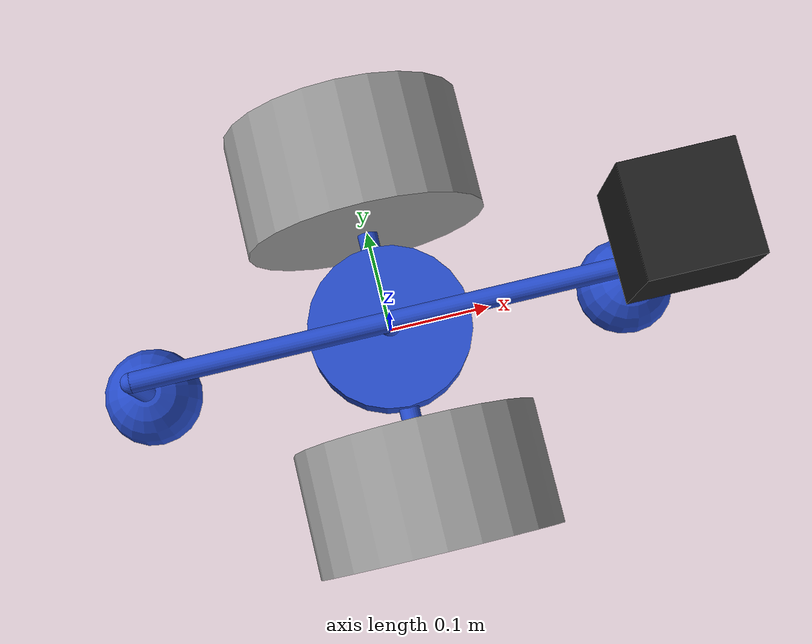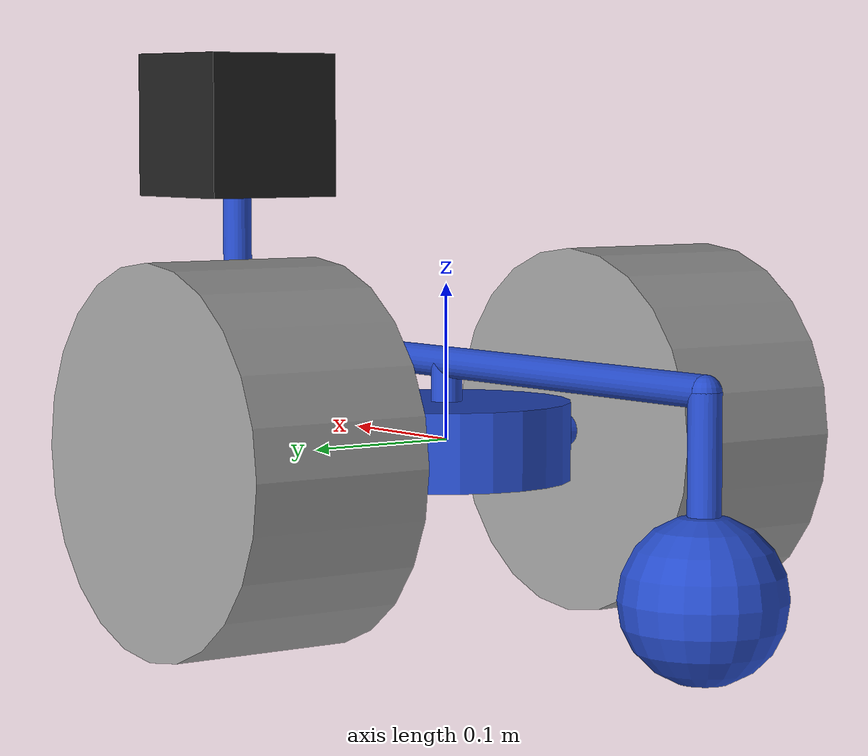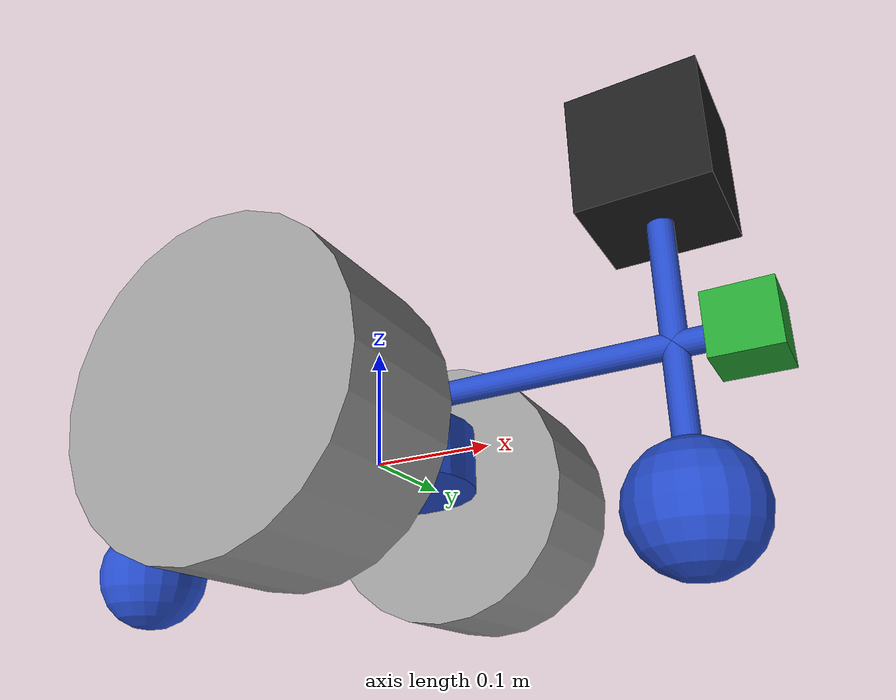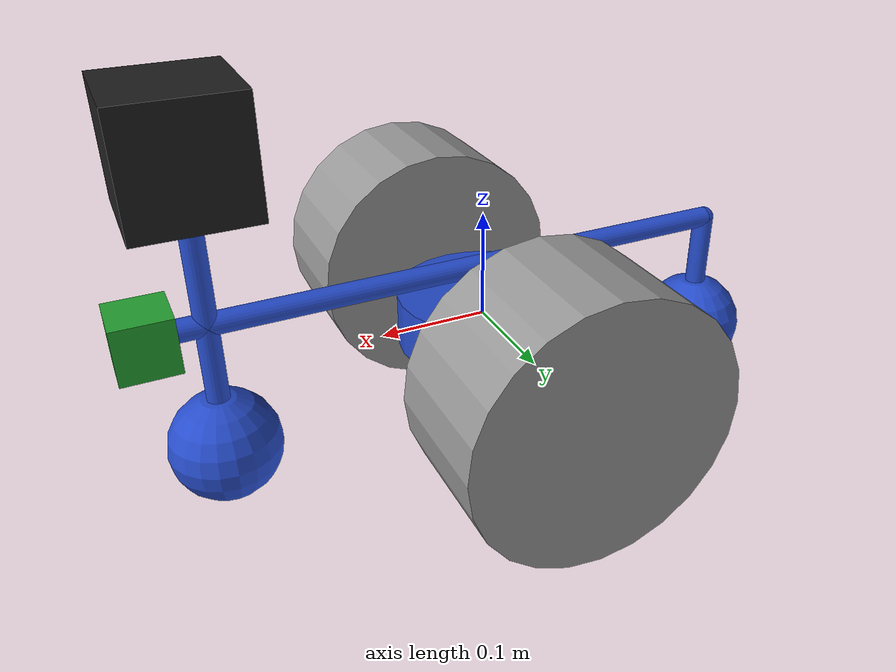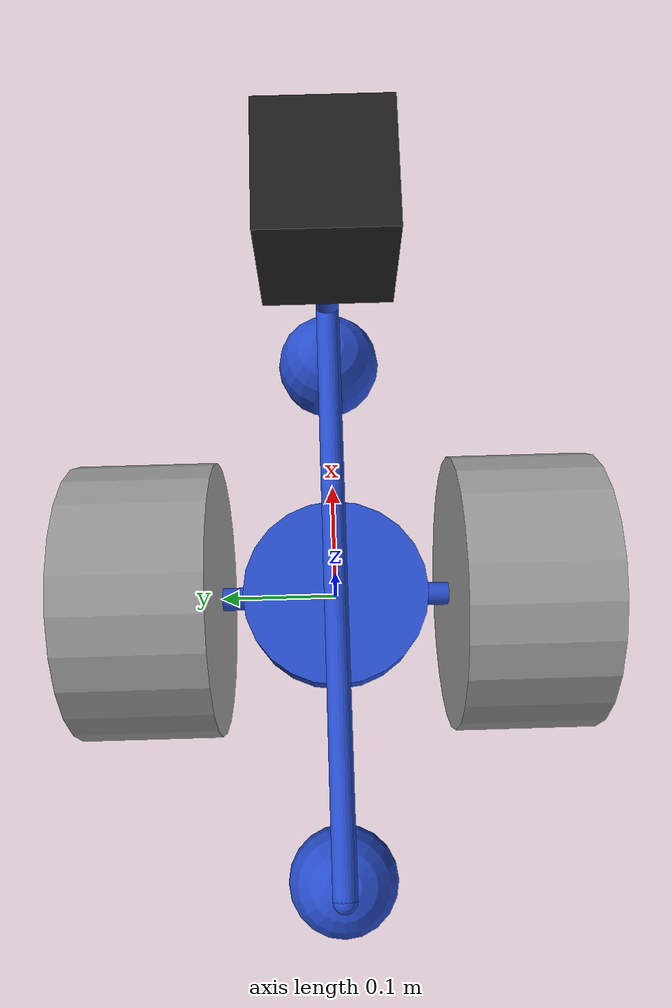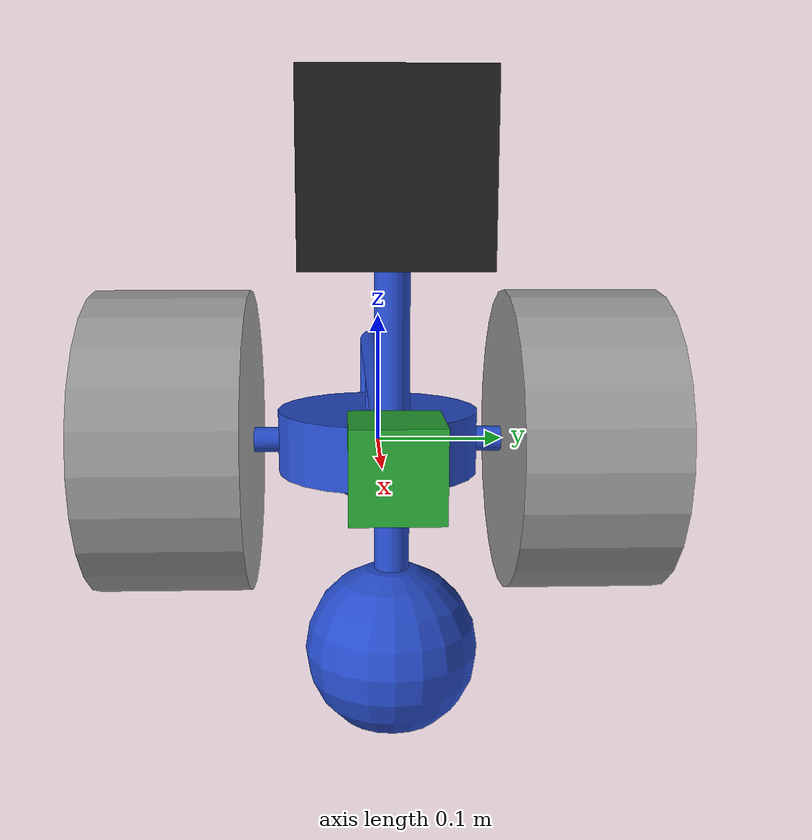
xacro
<?xml version='1.0'?>

<robot name="my_robot" xmlns:xacro="http://www.ros.org/wiki/xacro">

  <xacro:include filename="$(find my_robot)/urdf/my_robot.gazebo" />
  <link name="robot_footprint"></link>

  <joint name="robot_footprint_joint" type="fixed">
    <origin xyz="0 0 0" rpy="0 0 0" />
    <parent link="robot_footprint" />
    <child link="chassis" />
  </joint>

  <link name='chassis'>
    <pose>0 0 0.12 0 0 0</pose>

    <inertial>
      <mass value="10.0" />
      <origin xyz="0 0 0" rpy=" 0 0 0"/>
      <inertia ixx="0.1" ixy="0" ixz="0" iyy="0.1" iyz="0" izz="0.1" />
    </inertial>

    <visual name='chassis_visual'>
      <origin xyz="0 0 0" rpy=" 0 0 0" />
      <geometry>
        <cylinder radius="0.08" length="0.05" />
      </geometry>
    </visual>
    <collision name='chassis_collision'>
      <origin xyz="0 0 0" rpy=" 0 0 0" />
      <geometry>
        <cylinder radius="0.08" length="0.05" />
      </geometry>
    </collision>

    <xacro:property name="tube_radius" value="0.01" />
    <xacro:property name="caster_offset" value="0.25" />
    <xacro:property name="camera_size" value="0.05" />

    <!-- Could also add collision for the tubes, but it should be fine for this project. -->
    <!-- Also note that named visuals do not get the material/color, so we have to remove it. -->
    <visual> <!-- name='wheel_axle' -->
      <origin xyz="0 0 0" rpy="1.5707 0 0" />
      <geometry>
        <cylinder radius="${tube_radius}" length="${0.32 - 0.12 - 0.002}"/> <!-- just shy of touching wheels -->
      </geometry>
    </visual>
    <visual> <!-- name='middle_beam_v' -->
      <origin xyz="0 0 ${camera_size * 0.5}" rpy=" 0 0 0" />
      <geometry>
        <cylinder radius="${tube_radius}" length="${camera_size}"/>
      </geometry>
    </visual>
    <visual> <!-- name='middle_beam_h' -->
      <origin xyz="${camera_size * 0.5} 0 ${camera_size}" rpy="0 1.5707 0" />
      <geometry>
        <cylinder radius="${tube_radius}" length="${caster_offset * 2 + camera_size}"/>
      </geometry>
    </visual>
    <visual> <!-- name='front_leg_vis' -->
      <origin xyz="${caster_offset} 0 0.05" rpy=" 0 0 0" />
      <geometry>
        <cylinder radius="${tube_radius}" length="0.24"/>
      </geometry>
    </visual>
    <visual> <!-- name='back_leg_vis' -->
      <origin xyz="-${caster_offset} 0 ${(camera_size - 0.07) / 2}" rpy=" 0 0 0" />
      <geometry>
        <cylinder radius="${tube_radius}" length="${camera_size + 0.07}"/>
      </geometry>
    </visual>
    <visual> <!-- name='back_leg_ballcap' -->
      <origin xyz="-${caster_offset} 0 ${camera_size}" rpy=" 0 0 0" />
      <geometry>
        <sphere radius="${tube_radius}"/>
      </geometry>
    </visual>

    <!-- front caster -->
    <visual name='front_caster_vis'>
      <origin xyz="${caster_offset} 0 -0.07" rpy=" 0 0 0" />
      <geometry>
        <sphere radius="0.05" />
      </geometry>
    </visual>
    <collision name='front_caster_col'>
      <origin xyz="${caster_offset} 0 -0.07" rpy=" 0 0 0" />
      <geometry>
        <sphere radius="0.0499" />
      </geometry>
    </collision>

    <!-- back caster -->
    <visual name='back_caster_vis'>
      <origin xyz="-${caster_offset} 0 -0.07" rpy=" 0 0 0" />
      <geometry>
        <sphere radius="0.05" />
      </geometry>
    </visual>
    <collision name='back_caster_col'>
      <origin xyz="-${caster_offset} 0 -0.07" rpy=" 0 0 0" />
      <geometry>
        <sphere radius="0.0499" />
      </geometry>
    </collision>

  </link>

  <!-- ***************************** LEFT WHEEL ***************************** -->

  <link name='left_wheel'>

    <inertial>
      <mass value="15.0" />
      <origin xyz="0.0 0 0" rpy="0 1.5707 1.5707" />
      <inertia ixx="0.024" ixy="0" ixz="0" iyy="0.036" iyz="0" izz="0.024" />
    </inertial>

    <collision name='collision'>
      <origin xyz="0.0 0 0" rpy="0 1.5707 1.5707" />
      <geometry>
        <cylinder radius=".12" length=".12" />
      </geometry>
    </collision>

    <visual>
      <origin xyz="0.0 0 0" rpy="0 1.5707 1.5707" />
      <geometry>
        <cylinder radius=".12" length=".12" />
      </geometry>
    </visual>

  </link>

  <joint type="continuous" name="left_wheel_hinge">
    <origin xyz="0 0.16 0" rpy="0 0 0" />
    <child link="left_wheel" />
    <parent link="chassis" />
    <axis xyz="0 1 0" rpy="0 0 0" />
    <limit effort="10000" velocity="1000" />
    <dynamics damping="1.0" friction="1.0" />
  </joint>

  <!-- ***************************** RIGHT WHEEL ***************************** -->

  <link name='right_wheel'>

    <inertial>
      <mass value="15.0" />
      <origin xyz="0.0 0 0" rpy="0 1.5707 1.5707" />
      <inertia ixx="0.024" ixy="0" ixz="0" iyy="0.036" iyz="0" izz="0.024" />
    </inertial>

    <collision name='collision'>
      <origin xyz="0.0 0 0" rpy="0 1.5707 1.5707" />
      <geometry>
        <cylinder radius=".12" length=".12" />
      </geometry>
    </collision>

    <visual>
      <origin xyz="0.0 0 0" rpy="0 1.5707 1.5707" />
      <geometry>
        <cylinder radius=".12" length=".12" />
      </geometry>
    </visual>

  </link>

  <joint type="continuous" name="right_wheel_hinge">
    <origin xyz="0 -0.16 0" rpy="0 0 0" />
    <child link="right_wheel" />
    <parent link="chassis" />
    <axis xyz="0 1 0" rpy="0 0 0" />
    <limit effort="10000" velocity="1000" />
    <dynamics damping="1.0" friction="1.0" />
  </joint>

  <!-- ***************************** CAMERA ***************************** -->
  <link name="camera_link">
    <origin xyz="0.0 0.0 0" rpy="0.0 0.0 0.0" />

    <visual>
      <origin xyz="0.0 0.0 0.0" rpy="0.0 0.0 0.0" />
      <geometry>
        <box size="${camera_size} ${camera_size} ${camera_size}" />
      </geometry>
    </visual>

    <collision name="camera_col">
      <origin xyz="0.0 0.0 0.0" rpy="0.0 0.0 0.0" />
      <geometry>
        <box size="${camera_size} ${camera_size} ${camera_size}" />
      </geometry>
    </collision>

    <inertial>
      <mass value="1e-5" />
      <inertia ixx="1e-6" ixy="0" ixz="0" iyy="1e-6" iyz="0" izz="1e-6" />
    </inertial>
  </link>

  <joint name="camera_joint" type="fixed">
    <origin xyz="${caster_offset + camera_size} 0.0 ${camera_size}" rpy="0.0 0.0 0.0" />
    <parent link="chassis" />
    <child link="camera_link" />
    <axis xyz="0.0 1.0 0.0" />
    <limit lower="0.0" upper="0.0" effort="0.0" velocity="0.0" />
  </joint>

  <!-- ***************************** RGB-D CAMERA ***************************** -->
  <!--
      This fixes the depth information being rotated.
      See https://github.com/ros-simulation/gazebo_ros_pkgs/issues/243
  -->
  <link name="camera_link_optical">
  </link>

  <joint name="camera_optical_joint" type="fixed">
    <origin xyz="0 0 0" rpy="-1.5707 0 -1.5707"/>
    <parent link="camera_link"/>
    <child link="camera_link_optical"/>
  </joint>

  <!-- ***************************** LIDAR ***************************** -->
  <link name="hokuyo">
    <inertial>
      <mass value="1e-5" />
      <inertia ixx="1e-6" ixy="0" ixz="0" iyy="1e-6" iyz="0" izz="1e-6" />
    </inertial>
    <visual name="">
      <geometry>
        <box size="0.1 0.1 0.1" />
      </geometry>
    </visual>
    <collision>
      <geometry>
        <mesh filename="package://my_robot/meshes/hokuyo.dae" scale="1 1 1" />
      </geometry>
    </collision>
  </link>

  <joint name="hokuyo_joint" type="fixed">
    <origin xyz="${caster_offset} 0.0 0.2" rpy="0.0 0.0 0.0" />
    <parent link="chassis" />
    <child link="hokuyo" />
    <axis xyz="0.0 1.0 0.0" />
    <limit lower="0.0" upper="0.0" effort="0.0" velocity="0.0" />
  </joint>

  <!-- ***************************** MATERIALS ***************************** -->

  <gazebo reference="chassis">
    <material>Gazebo/Blue</material>
  </gazebo>
  <gazebo reference="left_wheel">
    <material>Gazebo/Gray</material>
  </gazebo>
  <gazebo reference="right_wheel">
    <material>Gazebo/Gray</material>
  </gazebo>
  <gazebo reference="camera_link">
    <material>Gazebo/Green</material>
  </gazebo>
  <gazebo reference="hokuyo">
    <material>Gazebo/Black</material>
  </gazebo>

</robot>
